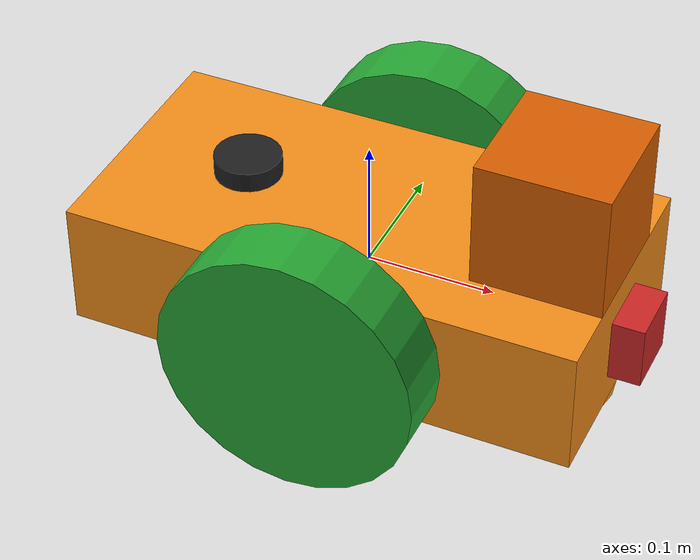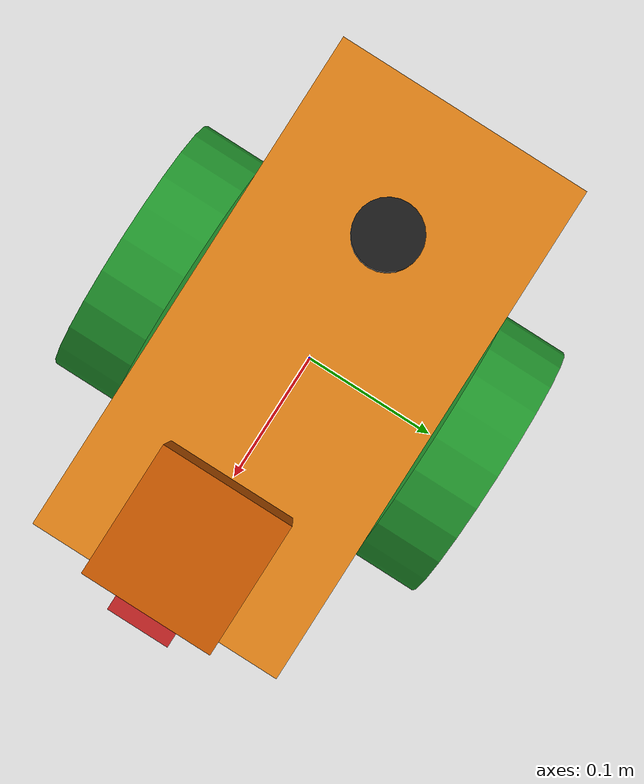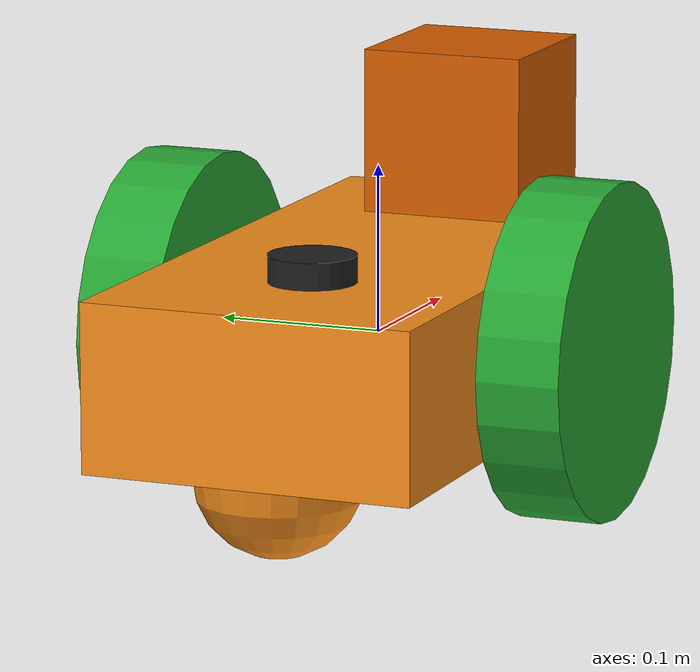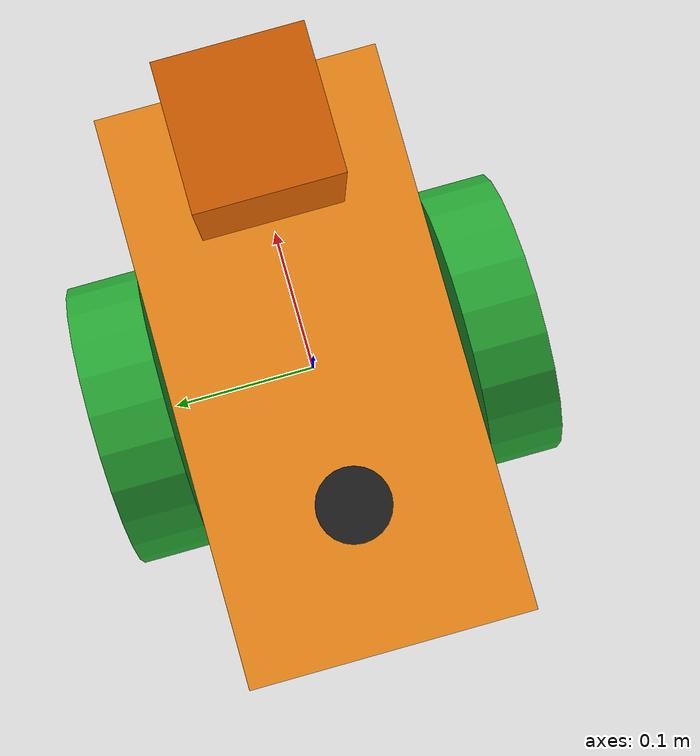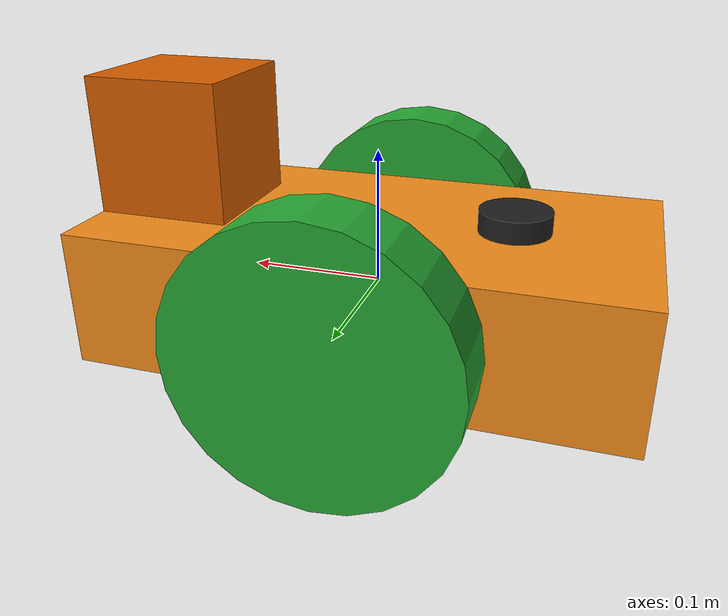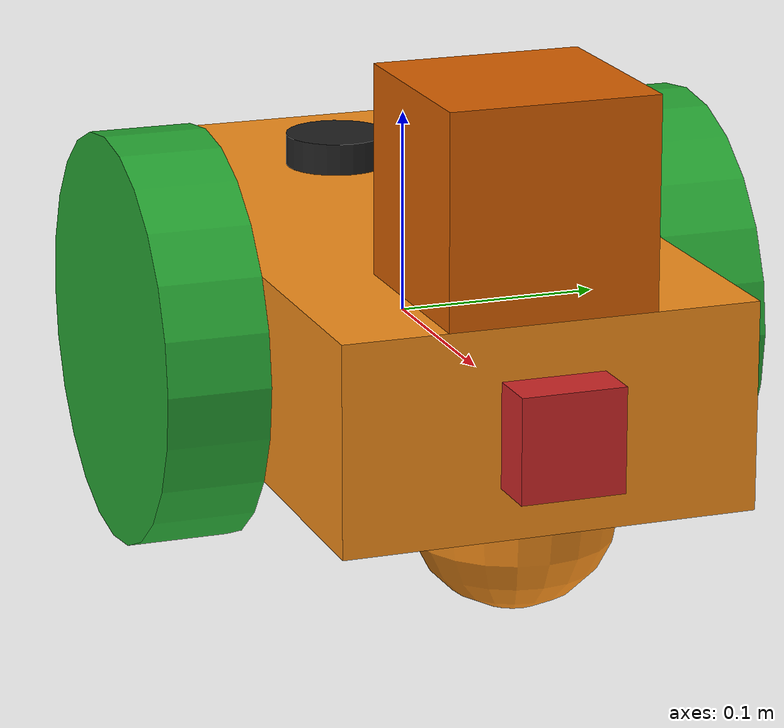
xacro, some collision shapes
<?xml version='1.0'?>

<robot name="my_robot" xmlns:xacro="http://www.ros.org/wiki/xacro">

  <xacro:include filename="$(find my_robot)/urdf/my_robot.gazebo" />

  <xacro:property name="dummy_inertia" value="1e-09"/>

  <link name="robot_footprint"></link>

  <joint name="robot_footprint_joint" type="fixed">
    <origin xyz="0 0 0" rpy="0 0 0" />
    <parent link="robot_footprint"/>
    <child link="chassis" />
  </joint>

  <link name='chassis'>
    <pose>0 0 0.1 0 0 0</pose>

    <inertial>
      <mass value="15.0"/>
      <origin xyz="0.0 0 0" rpy=" 0 0 0"/>
      <inertia
              ixx="0.1" ixy="0" ixz="0"
              iyy="0.1" iyz="0"
              izz="0.1"
      />
    </inertial>

    <collision name='collision'>
      <origin xyz="0 0 0" rpy=" 0 0 0"/>
      <geometry>
        <box size=".4 .2 .1"/>
      </geometry>
    </collision>

    <visual name='chassis_visual'>
      <origin xyz="0 0 0" rpy=" 0 0 0"/>
      <geometry>
        <box size=".4 .2 .1"/>
      </geometry>
    </visual>

    <collision name='back_caster_collision'>
      <origin xyz="-0.15 0 -0.05" rpy=" 0 0 0"/>
      <geometry>
        <sphere radius="0.0499"/>
      </geometry>
    </collision>

    <visual name='back_caster_visual'>
      <origin xyz="-0.15 0 -0.05" rpy=" 0 0 0"/>
      <geometry>
        <sphere radius="0.05"/>
      </geometry>
    </visual>

    <collision name='front_caster_collision'>
      <origin xyz="0.15 0 -0.05" rpy=" 0 0 0"/>
      <geometry>
        <sphere radius="0.0499"/>
      </geometry>
    </collision>

    <visual name='front_caster_visual'>
      <origin xyz="0.15 0 -0.05" rpy=" 0 0 0"/>
      <geometry>
        <sphere radius="0.05"/>
      </geometry>
    </visual>

  </link>

  <!-- Add two wheels -->

  <link name="left_wheel">
    <inertial>
      <origin xyz="0 0 0" rpy="0 1.5707 1.5707"/>
      <mass value="5"/>
      <inertia
              ixx="0.1" ixy="0" ixz="0"
              iyy="0.1" iyz="0" izz="0.1"
      />
    </inertial>

    <collision>
      <origin xyz="0 0 0" rpy="0 1.5707 1.5707"/>
      <geometry>
        <cylinder radius="0.1" length="0.05"/>
      </geometry>
    </collision>

    <visual>
      <origin xyz="0 0 0" rpy="0 1.5707 1.5707"/>
      <geometry>
        <cylinder radius="0.1" length="0.05"/>
      </geometry>
    </visual>

  </link>

  <link name="right_wheel">
    <inertial>
      <origin xyz="0 0 0" rpy="0 1.5707 1.5707"/>
      <mass value="5"/>
      <inertia
              ixx="0.1" ixy="0" ixz="0"
              iyy="0.1" iyz="0" izz="0.1"
      />
    </inertial>

    <collision>
      <origin xyz="0 0 0" rpy="0 1.5707 1.5707"/>
      <geometry>
        <cylinder radius="0.1" length="0.05"/>
      </geometry>
    </collision>

    <visual>
      <origin xyz="0 0 0" rpy="0 1.5707 1.5707"/>
      <geometry>
        <cylinder radius="0.1" length="0.05"/>
      </geometry>
    </visual>
  </link>

  <joint name="left_wheel_hinge" type="continuous">
    <origin xyz="0 0.125 0" rpy="0 0 0"/>
    <child link="left_wheel"/>
    <parent link="chassis"/>
    <axis xyz="0 1 0" rpy="0 0 0"/>
    <limit effort="10000" velocity="1000"/>
    <dynamics damping="1.0" friction="1.0"/>
  </joint>

  <joint name="right_wheel_hinge" type="continuous">
    <origin xyz="0 -0.125 0" rpy="0 0 0"/>
    <child link="right_wheel"/>
    <parent link="chassis"/>
    <axis xyz="0 1 0" rpy="0 0 0"/>
    <limit effort="10000" velocity="1000"/>
    <dynamics damping="1.0" friction="1.0"/>
  </joint>

  <!-- Add camera -->

  <link name="camera">
    <origin xyz="0 0 0" rpy="0 0 0" />

    <inertial>
      <mass value="0.1"/>
      <inertia
              ixx="1e-6" ixy="0" ixz="0"
              iyy="1e-6" iyz="0" izz="1e-6"
      />
    </inertial>

    <collision>
      <geometry>
        <box size="0.05 0.05 0.05"/>
      </geometry>
    </collision>

    <visual>
      <geometry>
        <box size="0.05 0.05 0.05"/>
      </geometry>
    </visual>
  </link>

  <joint name="camera_joint" type="fixed">
    <axis xyz="0 1 0"/>
    <origin xyz="0.2 0 0" rpy="0 0 0" />
    <parent link="chassis"/>
    <child link="camera" />
  </joint>

  <!-- Add Lidar -->

  <link name="hokuyo">
    <origin xyz="0 0 0" rpy="0 0 0" />

    <inertial>
      <mass value="1e-5"/>
      <inertia
              ixx="1e-6" ixy="0" ixz="0"
              iyy="1e-6" iyz="0" izz="1e-6"
      />
    </inertial>

    <collision>
      <geometry>
        <box size=".1 .1 .1"/>
      </geometry>
    </collision>

    <visual>
      <geometry>
        <mesh filename="package://my_robot/meshes/hokuyo.dae"/>
      </geometry>
    </visual>
  </link>

  <joint name="hokuyo_joint" type="fixed">
    <axis xyz="0 1 0"/>
    <origin xyz="0.15 0 0.1" rpy="0 0 0" />
    <parent link="chassis"/>
    <child link="hokuyo" />
  </joint>

  <!-- add imu and gps -->
  <link name="navsat_link">
    <origin xyz="0 0 0" rpy="0 0 0" />
    <visual>
      <geometry>
        <cylinder radius="0.026" length="0.016" />
      </geometry>
      <origin xyz="0 0 0.008" />
      <material name="black" />
    </visual>
  </link>

  <joint name="navsat_joint" type="fixed">
    <parent link="chassis" />
    <child link="navsat_link" />
    <origin xyz="-0.10 0.0 0.05" />
  </joint>

  <!-- imu -->
  <link name="imu_link">
    <inertial>
      <mass value="0.001"/>
      <origin xyz="0 0 0" rpy="0 0 0"/>
      <inertia ixx="${dummy_inertia}" ixy="0.0" ixz="0.0" iyy="${dummy_inertia}" iyz="0.0" izz="${dummy_inertia}"/>
    </inertial>
  </link>
  <joint name="imu_joint" type="fixed">
    <parent link="chassis" />
    <child link="imu_link" />
  </joint>

  <!-- Color the components -->

  <gazebo reference="chassis">
    <material>Gazebo/Orange</material>
  </gazebo>

  <gazebo reference="left_wheel">
    <material>Gazebo/Green</material>
  </gazebo>

  <gazebo reference="right_wheel">
    <material>Gazebo/Green</material>
  </gazebo>

  <gazebo reference="camera">
    <material>Gazebo/Red</material>
  </gazebo>

  </robot>
